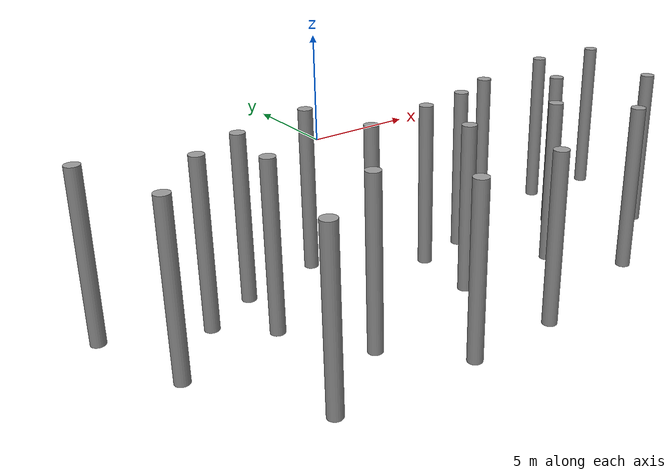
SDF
<sdf version="1.6">
 <model name="skog2">
  <link name="link_0_clone_22">
   <inertial>
    <mass>1</mass>
    <inertia><ixx>0.145833</ixx><ixy>0</ixy><ixz>0</ixz><iyy>0.145833</iyy><iyz>0</iyz><izz>0.125</izz></inertia>
   </inertial>
   <pose>-9.36789 -6.97052 0 0 -0 0</pose>
   <visual name="visual">
    <geometry><cylinder><radius>0.3</radius><length>7</length></cylinder></geometry>
    <material>
     <lighting>1</lighting>
     <script><uri>file://media/materials/scripts/gazebo.material</uri><name>Gazebo/Grey</name></script>
     <shader type="vertex"><normal_map>__default__</normal_map></shader>
     <ambient>0.3 0.3 0.3 1</ambient>
     <diffuse>0.7 0.7 0.7 1</diffuse>
     <specular>0.01 0.01 0.01 1</specular>
     <emissive>0 0 0 1</emissive>
    </material>
   </visual>
   <collision name="collision">
    <geometry><cylinder><radius>0.3</radius><length>7</length></cylinder></geometry>
    <surface>
     <friction>
      <ode><mu>1</mu><mu2>1</mu2><fdir1>0 0 0</fdir1><slip1>0</slip1><slip2>0</slip2></ode>
      <torsional>
       <coefficient>1</coefficient>
       <patch_radius>0</patch_radius>
       <surface_radius>0</surface_radius>
       <use_patch_radius>1</use_patch_radius>
       <ode><slip>0</slip></ode>
      </torsional>
     </friction>
     <bounce><restitution_coefficient>0</restitution_coefficient><threshold>1e+06</threshold></bounce>
     <contact>
      <collide_without_contact>0</collide_without_contact>
      <collide_without_contact_bitmask>1</collide_without_contact_bitmask>
      <collide_bitmask>1</collide_bitmask>
      <ode>
       <soft_cfm>0</soft_cfm>
       <soft_erp>0.2</soft_erp>
       <kp>1e+13</kp>
       <kd>1</kd>
       <max_vel>0.01</max_vel>
       <min_depth>0</min_depth>
      </ode>
      <bullet>
       <split_impulse>1</split_impulse>
       <split_impulse_penetration_threshold>-0.01</split_impulse_penetration_threshold>
       <soft_cfm>0</soft_cfm>
       <soft_erp>0.2</soft_erp>
       <kp>1e+13</kp>
       <kd>1</kd>
      </bullet>
     </contact>
    </surface>
   </collision>
  </link>
  <link name="link_0_clone_23">
   <inertial>
    <mass>1</mass>
    <inertia><ixx>0.145833</ixx><ixy>0</ixy><ixz>0</ixz><iyy>0.145833</iyy><iyz>0</iyz><izz>0.125</izz></inertia>
   </inertial>
   <pose>-7.53777 -8.66213 0 0 -0 0</pose>
   <visual name="visual">
    <geometry><cylinder><radius>0.3</radius><length>7</length></cylinder></geometry>
    <material>
     <lighting>1</lighting>
     <script><uri>file://media/materials/scripts/gazebo.material</uri><name>Gazebo/Grey</name></script>
     <shader type="vertex"><normal_map>__default__</normal_map></shader>
     <ambient>0.3 0.3 0.3 1</ambient>
     <diffuse>0.7 0.7 0.7 1</diffuse>
     <specular>0.01 0.01 0.01 1</specular>
     <emissive>0 0 0 1</emissive>
    </material>
   </visual>
   <collision name="collision">
    <geometry><cylinder><radius>0.3</radius><length>7</length></cylinder></geometry>
    <surface>
     <friction>
      <ode><mu>1</mu><mu2>1</mu2><fdir1>0 0 0</fdir1><slip1>0</slip1><slip2>0</slip2></ode>
      <torsional>
       <coefficient>1</coefficient>
       <patch_radius>0</patch_radius>
       <surface_radius>0</surface_radius>
       <use_patch_radius>1</use_patch_radius>
       <ode><slip>0</slip></ode>
      </torsional>
     </friction>
     <bounce><restitution_coefficient>0</restitution_coefficient><threshold>1e+06</threshold></bounce>
     <contact>
      <collide_without_contact>0</collide_without_contact>
      <collide_without_contact_bitmask>1</collide_without_contact_bitmask>
      <collide_bitmask>1</collide_bitmask>
      <ode>
       <soft_cfm>0</soft_cfm>
       <soft_erp>0.2</soft_erp>
       <kp>1e+13</kp>
       <kd>1</kd>
       <max_vel>0.01</max_vel>
       <min_depth>0</min_depth>
      </ode>
      <bullet>
       <split_impulse>1</split_impulse>
       <split_impulse_penetration_threshold>-0.01</split_impulse_penetration_threshold>
       <soft_cfm>0</soft_cfm>
       <soft_erp>0.2</soft_erp>
       <kp>1e+13</kp>
       <kd>1</kd>
      </bullet>
     </contact>
    </surface>
   </collision>
  </link>
  <link name="link_0_clone_24">
   <inertial>
    <mass>1</mass>
    <inertia><ixx>0.145833</ixx><ixy>0</ixy><ixz>0</ixz><iyy>0.145833</iyy><iyz>0</iyz><izz>0.125</izz></inertia>
   </inertial>
   <pose>-2.75121 -8.16197 0 0 -0 0</pose>
   <visual name="visual">
    <geometry><cylinder><radius>0.3</radius><length>7</length></cylinder></geometry>
    <material>
     <lighting>1</lighting>
     <script><uri>file://media/materials/scripts/gazebo.material</uri><name>Gazebo/Grey</name></script>
     <shader type="vertex"><normal_map>__default__</normal_map></shader>
     <ambient>0.3 0.3 0.3 1</ambient>
     <diffuse>0.7 0.7 0.7 1</diffuse>
     <specular>0.01 0.01 0.01 1</specular>
     <emissive>0 0 0 1</emissive>
    </material>
   </visual>
   <collision name="collision">
    <geometry><cylinder><radius>0.3</radius><length>7</length></cylinder></geometry>
    <surface>
     <friction>
      <ode><mu>1</mu><mu2>1</mu2><fdir1>0 0 0</fdir1><slip1>0</slip1><slip2>0</slip2></ode>
      <torsional>
       <coefficient>1</coefficient>
       <patch_radius>0</patch_radius>
       <surface_radius>0</surface_radius>
       <use_patch_radius>1</use_patch_radius>
       <ode><slip>0</slip></ode>
      </torsional>
     </friction>
     <bounce><restitution_coefficient>0</restitution_coefficient><threshold>1e+06</threshold></bounce>
     <contact>
      <collide_without_contact>0</collide_without_contact>
      <collide_without_contact_bitmask>1</collide_without_contact_bitmask>
      <collide_bitmask>1</collide_bitmask>
      <ode>
       <soft_cfm>0</soft_cfm>
       <soft_erp>0.2</soft_erp>
       <kp>1e+13</kp>
       <kd>1</kd>
       <max_vel>0.01</max_vel>
       <min_depth>0</min_depth>
      </ode>
      <bullet>
       <split_impulse>1</split_impulse>
       <split_impulse_penetration_threshold>-0.01</split_impulse_penetration_threshold>
       <soft_cfm>0</soft_cfm>
       <soft_erp>0.2</soft_erp>
       <kp>1e+13</kp>
       <kd>1</kd>
      </bullet>
     </contact>
    </surface>
   </collision>
  </link>
  <link name="link_0_clone_25">
   <inertial>
    <mass>1</mass>
    <inertia><ixx>0.145833</ixx><ixy>0</ixy><ixz>0</ixz><iyy>0.145833</iyy><iyz>0</iyz><izz>0.125</izz></inertia>
   </inertial>
   <pose>-7.15427 -5.82621 0 0 -0 0</pose>
   <visual name="visual">
    <geometry><cylinder><radius>0.3</radius><length>7</length></cylinder></geometry>
    <material>
     <lighting>1</lighting>
     <script><uri>file://media/materials/scripts/gazebo.material</uri><name>Gazebo/Grey</name></script>
     <shader type="vertex"><normal_map>__default__</normal_map></shader>
     <ambient>0.3 0.3 0.3 1</ambient>
     <diffuse>0.7 0.7 0.7 1</diffuse>
     <specular>0.01 0.01 0.01 1</specular>
     <emissive>0 0 0 1</emissive>
    </material>
   </visual>
   <collision name="collision">
    <geometry><cylinder><radius>0.3</radius><length>7</length></cylinder></geometry>
    <surface>
     <friction>
      <ode><mu>1</mu><mu2>1</mu2><fdir1>0 0 0</fdir1><slip1>0</slip1><slip2>0</slip2></ode>
      <torsional>
       <coefficient>1</coefficient>
       <patch_radius>0</patch_radius>
       <surface_radius>0</surface_radius>
       <use_patch_radius>1</use_patch_radius>
       <ode><slip>0</slip></ode>
      </torsional>
     </friction>
     <bounce><restitution_coefficient>0</restitution_coefficient><threshold>1e+06</threshold></bounce>
     <contact>
      <collide_without_contact>0</collide_without_contact>
      <collide_without_contact_bitmask>1</collide_without_contact_bitmask>
      <collide_bitmask>1</collide_bitmask>
      <ode>
       <soft_cfm>0</soft_cfm>
       <soft_erp>0.2</soft_erp>
       <kp>1e+13</kp>
       <kd>1</kd>
       <max_vel>0.01</max_vel>
       <min_depth>0</min_depth>
      </ode>
      <bullet>
       <split_impulse>1</split_impulse>
       <split_impulse_penetration_threshold>-0.01</split_impulse_penetration_threshold>
       <soft_cfm>0</soft_cfm>
       <soft_erp>0.2</soft_erp>
       <kp>1e+13</kp>
       <kd>1</kd>
      </bullet>
     </contact>
    </surface>
   </collision>
  </link>
  <link name="link_0_clone_26">
   <inertial>
    <mass>1</mass>
    <inertia><ixx>0.145833</ixx><ixy>0</ixy><ixz>0</ixz><iyy>0.145833</iyy><iyz>0</iyz><izz>0.125</izz></inertia>
   </inertial>
   <pose>2.77127 -7.06466 0 0 -0 0</pose>
   <visual name="visual">
    <geometry><cylinder><radius>0.3</radius><length>7</length></cylinder></geometry>
    <material>
     <lighting>1</lighting>
     <script><uri>file://media/materials/scripts/gazebo.material</uri><name>Gazebo/Grey</name></script>
     <shader type="vertex"><normal_map>__default__</normal_map></shader>
     <ambient>0.3 0.3 0.3 1</ambient>
     <diffuse>0.7 0.7 0.7 1</diffuse>
     <specular>0.01 0.01 0.01 1</specular>
     <emissive>0 0 0 1</emissive>
    </material>
   </visual>
   <collision name="collision">
    <geometry><cylinder><radius>0.3</radius><length>7</length></cylinder></geometry>
    <surface>
     <friction>
      <ode><mu>1</mu><mu2>1</mu2><fdir1>0 0 0</fdir1><slip1>0</slip1><slip2>0</slip2></ode>
      <torsional>
       <coefficient>1</coefficient>
       <patch_radius>0</patch_radius>
       <surface_radius>0</surface_radius>
       <use_patch_radius>1</use_patch_radius>
       <ode><slip>0</slip></ode>
      </torsional>
     </friction>
     <bounce><restitution_coefficient>0</restitution_coefficient><threshold>1e+06</threshold></bounce>
     <contact>
      <collide_without_contact>0</collide_without_contact>
      <collide_without_contact_bitmask>1</collide_without_contact_bitmask>
      <collide_bitmask>1</collide_bitmask>
      <ode>
       <soft_cfm>0</soft_cfm>
       <soft_erp>0.2</soft_erp>
       <kp>1e+13</kp>
       <kd>1</kd>
       <max_vel>0.01</max_vel>
       <min_depth>0</min_depth>
      </ode>
      <bullet>
       <split_impulse>1</split_impulse>
       <split_impulse_penetration_threshold>-0.01</split_impulse_penetration_threshold>
       <soft_cfm>0</soft_cfm>
       <soft_erp>0.2</soft_erp>
       <kp>1e+13</kp>
       <kd>1</kd>
      </bullet>
     </contact>
    </surface>
   </collision>
  </link>
  <link name="link_0_clone_27">
   <inertial>
    <mass>1</mass>
    <inertia><ixx>0.145833</ixx><ixy>0</ixy><ixz>0</ixz><iyy>0.145833</iyy><iyz>0</iyz><izz>0.125</izz></inertia>
   </inertial>
   <pose>4.93309 -6.15341 0 0 -0 0</pose>
   <visual name="visual">
    <geometry><cylinder><radius>0.3</radius><length>7</length></cylinder></geometry>
    <material>
     <lighting>1</lighting>
     <script><uri>file://media/materials/scripts/gazebo.material</uri><name>Gazebo/Grey</name></script>
     <shader type="vertex"><normal_map>__default__</normal_map></shader>
     <ambient>0.3 0.3 0.3 1</ambient>
     <diffuse>0.7 0.7 0.7 1</diffuse>
     <specular>0.01 0.01 0.01 1</specular>
     <emissive>0 0 0 1</emissive>
    </material>
   </visual>
   <collision name="collision">
    <geometry><cylinder><radius>0.3</radius><length>7</length></cylinder></geometry>
    <surface>
     <friction>
      <ode><mu>1</mu><mu2>1</mu2><fdir1>0 0 0</fdir1><slip1>0</slip1><slip2>0</slip2></ode>
      <torsional>
       <coefficient>1</coefficient>
       <patch_radius>0</patch_radius>
       <surface_radius>0</surface_radius>
       <use_patch_radius>1</use_patch_radius>
       <ode><slip>0</slip></ode>
      </torsional>
     </friction>
     <bounce><restitution_coefficient>0</restitution_coefficient><threshold>1e+06</threshold></bounce>
     <contact>
      <collide_without_contact>0</collide_without_contact>
      <collide_without_contact_bitmask>1</collide_without_contact_bitmask>
      <collide_bitmask>1</collide_bitmask>
      <ode>
       <soft_cfm>0</soft_cfm>
       <soft_erp>0.2</soft_erp>
       <kp>1e+13</kp>
       <kd>1</kd>
       <max_vel>0.01</max_vel>
       <min_depth>0</min_depth>
      </ode>
      <bullet>
       <split_impulse>1</split_impulse>
       <split_impulse_penetration_threshold>-0.01</split_impulse_penetration_threshold>
       <soft_cfm>0</soft_cfm>
       <soft_erp>0.2</soft_erp>
       <kp>1e+13</kp>
       <kd>1</kd>
      </bullet>
     </contact>
    </surface>
   </collision>
  </link>
  <link name="link_0_clone_28">
   <inertial>
    <mass>1</mass>
    <inertia><ixx>0.145833</ixx><ixy>0</ixy><ixz>0</ixz><iyy>0.145833</iyy><iyz>0</iyz><izz>0.125</izz></inertia>
   </inertial>
   <pose>7.6559 -7.95453 0 0 -0 0</pose>
   <visual name="visual">
    <geometry><cylinder><radius>0.3</radius><length>7</length></cylinder></geometry>
    <material>
     <lighting>1</lighting>
     <script><uri>file://media/materials/scripts/gazebo.material</uri><name>Gazebo/Grey</name></script>
     <shader type="vertex"><normal_map>__default__</normal_map></shader>
     <ambient>0.3 0.3 0.3 1</ambient>
     <diffuse>0.7 0.7 0.7 1</diffuse>
     <specular>0.01 0.01 0.01 1</specular>
     <emissive>0 0 0 1</emissive>
    </material>
   </visual>
   <collision name="collision">
    <geometry><cylinder><radius>0.3</radius><length>7</length></cylinder></geometry>
    <surface>
     <friction>
      <ode><mu>1</mu><mu2>1</mu2><fdir1>0 0 0</fdir1><slip1>0</slip1><slip2>0</slip2></ode>
      <torsional>
       <coefficient>1</coefficient>
       <patch_radius>0</patch_radius>
       <surface_radius>0</surface_radius>
       <use_patch_radius>1</use_patch_radius>
       <ode><slip>0</slip></ode>
      </torsional>
     </friction>
     <bounce><restitution_coefficient>0</restitution_coefficient><threshold>1e+06</threshold></bounce>
     <contact>
      <collide_without_contact>0</collide_without_contact>
      <collide_without_contact_bitmask>1</collide_without_contact_bitmask>
      <collide_bitmask>1</collide_bitmask>
      <ode>
       <soft_cfm>0</soft_cfm>
       <soft_erp>0.2</soft_erp>
       <kp>1e+13</kp>
       <kd>1</kd>
       <max_vel>0.01</max_vel>
       <min_depth>0</min_depth>
      </ode>
      <bullet>
       <split_impulse>1</split_impulse>
       <split_impulse_penetration_threshold>-0.01</split_impulse_penetration_threshold>
       <soft_cfm>0</soft_cfm>
       <soft_erp>0.2</soft_erp>
       <kp>1e+13</kp>
       <kd>1</kd>
      </bullet>
     </contact>
    </surface>
   </collision>
  </link>
  <link name="link_0_clone_30">
   <inertial>
    <mass>1</mass>
    <inertia><ixx>0.145833</ixx><ixy>0</ixy><ixz>0</ixz><iyy>0.145833</iyy><iyz>0</iyz><izz>0.125</izz></inertia>
   </inertial>
   <pose>9.4573 -5.17921 0 0 -0 0</pose>
   <visual name="visual">
    <geometry><cylinder><radius>0.3</radius><length>7</length></cylinder></geometry>
    <material>
     <lighting>1</lighting>
     <script><uri>file://media/materials/scripts/gazebo.material</uri><name>Gazebo/Grey</name></script>
     <shader type="vertex"><normal_map>__default__</normal_map></shader>
     <ambient>0.3 0.3 0.3 1</ambient>
     <diffuse>0.7 0.7 0.7 1</diffuse>
     <specular>0.01 0.01 0.01 1</specular>
     <emissive>0 0 0 1</emissive>
    </material>
   </visual>
   <collision name="collision">
    <geometry><cylinder><radius>0.3</radius><length>7</length></cylinder></geometry>
    <surface>
     <friction>
      <ode><mu>1</mu><mu2>1</mu2><fdir1>0 0 0</fdir1><slip1>0</slip1><slip2>0</slip2></ode>
      <torsional>
       <coefficient>1</coefficient>
       <patch_radius>0</patch_radius>
       <surface_radius>0</surface_radius>
       <use_patch_radius>1</use_patch_radius>
       <ode><slip>0</slip></ode>
      </torsional>
     </friction>
     <bounce><restitution_coefficient>0</restitution_coefficient><threshold>1e+06</threshold></bounce>
     <contact>
      <collide_without_contact>0</collide_without_contact>
      <collide_without_contact_bitmask>1</collide_without_contact_bitmask>
      <collide_bitmask>1</collide_bitmask>
      <ode>
       <soft_cfm>0</soft_cfm>
       <soft_erp>0.2</soft_erp>
       <kp>1e+13</kp>
       <kd>1</kd>
       <max_vel>0.01</max_vel>
       <min_depth>0</min_depth>
      </ode>
      <bullet>
       <split_impulse>1</split_impulse>
       <split_impulse_penetration_threshold>-0.01</split_impulse_penetration_threshold>
       <soft_cfm>0</soft_cfm>
       <soft_erp>0.2</soft_erp>
       <kp>1e+13</kp>
       <kd>1</kd>
      </bullet>
     </contact>
    </surface>
   </collision>
  </link>
  <link name="link_0_clone_44">
   <inertial>
    <mass>1</mass>
    <inertia><ixx>0.145833</ixx><ixy>0</ixy><ixz>0</ixz><iyy>0.145833</iyy><iyz>0</iyz><izz>0.125</izz></inertia>
   </inertial>
   <pose>-13.0918 -5.32141 0 0 -0 0</pose>
   <visual name="visual">
    <geometry><cylinder><radius>0.3</radius><length>7</length></cylinder></geometry>
    <material>
     <lighting>1</lighting>
     <script><uri>file://media/materials/scripts/gazebo.material</uri><name>Gazebo/Grey</name></script>
     <shader type="vertex"><normal_map>__default__</normal_map></shader>
     <ambient>0.3 0.3 0.3 1</ambient>
     <diffuse>0.7 0.7 0.7 1</diffuse>
     <specular>0.01 0.01 0.01 1</specular>
     <emissive>0 0 0 1</emissive>
    </material>
   </visual>
   <collision name="collision">
    <geometry><cylinder><radius>0.3</radius><length>7</length></cylinder></geometry>
    <surface>
     <friction>
      <ode><mu>1</mu><mu2>1</mu2><fdir1>0 0 0</fdir1><slip1>0</slip1><slip2>0</slip2></ode>
      <torsional>
       <coefficient>1</coefficient>
       <patch_radius>0</patch_radius>
       <surface_radius>0</surface_radius>
       <use_patch_radius>1</use_patch_radius>
       <ode><slip>0</slip></ode>
      </torsional>
     </friction>
     <bounce><restitution_coefficient>0</restitution_coefficient><threshold>1e+06</threshold></bounce>
     <contact>
      <collide_without_contact>0</collide_without_contact>
      <collide_without_contact_bitmask>1</collide_without_contact_bitmask>
      <collide_bitmask>1</collide_bitmask>
      <ode>
       <soft_cfm>0</soft_cfm>
       <soft_erp>0.2</soft_erp>
       <kp>1e+13</kp>
       <kd>1</kd>
       <max_vel>0.01</max_vel>
       <min_depth>0</min_depth>
      </ode>
      <bullet>
       <split_impulse>1</split_impulse>
       <split_impulse_penetration_threshold>-0.01</split_impulse_penetration_threshold>
       <soft_cfm>0</soft_cfm>
       <soft_erp>0.2</soft_erp>
       <kp>1e+13</kp>
       <kd>1</kd>
      </bullet>
     </contact>
    </surface>
   </collision>
  </link>
  <link name="link_0_clone_45">
   <inertial>
    <mass>1</mass>
    <inertia><ixx>0.145833</ixx><ixy>0</ixy><ixz>0</ixz><iyy>0.145833</iyy><iyz>0</iyz><izz>0.125</izz></inertia>
   </inertial>
   <pose>-11.7464 -9.42807 0 0 -0 0</pose>
   <visual name="visual">
    <geometry><cylinder><radius>0.3</radius><length>7</length></cylinder></geometry>
    <material>
     <lighting>1</lighting>
     <script><uri>file://media/materials/scripts/gazebo.material</uri><name>Gazebo/Grey</name></script>
     <shader type="vertex"><normal_map>__default__</normal_map></shader>
     <ambient>0.3 0.3 0.3 1</ambient>
     <diffuse>0.7 0.7 0.7 1</diffuse>
     <specular>0.01 0.01 0.01 1</specular>
     <emissive>0 0 0 1</emissive>
    </material>
   </visual>
   <collision name="collision">
    <geometry><cylinder><radius>0.3</radius><length>7</length></cylinder></geometry>
    <surface>
     <friction>
      <ode><mu>1</mu><mu2>1</mu2><fdir1>0 0 0</fdir1><slip1>0</slip1><slip2>0</slip2></ode>
      <torsional>
       <coefficient>1</coefficient>
       <patch_radius>0</patch_radius>
       <surface_radius>0</surface_radius>
       <use_patch_radius>1</use_patch_radius>
       <ode><slip>0</slip></ode>
      </torsional>
     </friction>
     <bounce><restitution_coefficient>0</restitution_coefficient><threshold>1e+06</threshold></bounce>
     <contact>
      <collide_without_contact>0</collide_without_contact>
      <collide_without_contact_bitmask>1</collide_without_contact_bitmask>
      <collide_bitmask>1</collide_bitmask>
      <ode>
       <soft_cfm>0</soft_cfm>
       <soft_erp>0.2</soft_erp>
       <kp>1e+13</kp>
       <kd>1</kd>
       <max_vel>0.01</max_vel>
       <min_depth>0</min_depth>
      </ode>
      <bullet>
       <split_impulse>1</split_impulse>
       <split_impulse_penetration_threshold>-0.01</split_impulse_penetration_threshold>
       <soft_cfm>0</soft_cfm>
       <soft_erp>0.2</soft_erp>
       <kp>1e+13</kp>
       <kd>1</kd>
      </bullet>
     </contact>
    </surface>
   </collision>
  </link>
  <link name="link_0_clone_46">
   <inertial>
    <mass>1</mass>
    <inertia><ixx>0.145833</ixx><ixy>0</ixy><ixz>0</ixz><iyy>0.145833</iyy><iyz>0</iyz><izz>0.125</izz></inertia>
   </inertial>
   <pose>-5.45294 -11.9323 0 0 -0 0</pose>
   <visual name="visual">
    <geometry><cylinder><radius>0.3</radius><length>7</length></cylinder></geometry>
    <material>
     <lighting>1</lighting>
     <script><uri>file://media/materials/scripts/gazebo.material</uri><name>Gazebo/Grey</name></script>
     <shader type="vertex"><normal_map>__default__</normal_map></shader>
     <ambient>0.3 0.3 0.3 1</ambient>
     <diffuse>0.7 0.7 0.7 1</diffuse>
     <specular>0.01 0.01 0.01 1</specular>
     <emissive>0 0 0 1</emissive>
    </material>
   </visual>
   <collision name="collision">
    <geometry><cylinder><radius>0.3</radius><length>7</length></cylinder></geometry>
    <surface>
     <friction>
      <ode><mu>1</mu><mu2>1</mu2><fdir1>0 0 0</fdir1><slip1>0</slip1><slip2>0</slip2></ode>
      <torsional>
       <coefficient>1</coefficient>
       <patch_radius>0</patch_radius>
       <surface_radius>0</surface_radius>
       <use_patch_radius>1</use_patch_radius>
       <ode><slip>0</slip></ode>
      </torsional>
     </friction>
     <bounce><restitution_coefficient>0</restitution_coefficient><threshold>1e+06</threshold></bounce>
     <contact>
      <collide_without_contact>0</collide_without_contact>
      <collide_without_contact_bitmask>1</collide_without_contact_bitmask>
      <collide_bitmask>1</collide_bitmask>
      <ode>
       <soft_cfm>0</soft_cfm>
       <soft_erp>0.2</soft_erp>
       <kp>1e+13</kp>
       <kd>1</kd>
       <max_vel>0.01</max_vel>
       <min_depth>0</min_depth>
      </ode>
      <bullet>
       <split_impulse>1</split_impulse>
       <split_impulse_penetration_threshold>-0.01</split_impulse_penetration_threshold>
       <soft_cfm>0</soft_cfm>
       <soft_erp>0.2</soft_erp>
       <kp>1e+13</kp>
       <kd>1</kd>
      </bullet>
     </contact>
    </surface>
   </collision>
  </link>
  <link name="link_0_clone_47">
   <inertial>
    <mass>1</mass>
    <inertia><ixx>0.145833</ixx><ixy>0</ixy><ixz>0</ixz><iyy>0.145833</iyy><iyz>0</iyz><izz>0.125</izz></inertia>
   </inertial>
   <pose>0.179659 -10.4379 0 0 -0 0</pose>
   <visual name="visual">
    <geometry><cylinder><radius>0.3</radius><length>7</length></cylinder></geometry>
    <material>
     <lighting>1</lighting>
     <script><uri>file://media/materials/scripts/gazebo.material</uri><name>Gazebo/Grey</name></script>
     <shader type="vertex"><normal_map>__default__</normal_map></shader>
     <ambient>0.3 0.3 0.3 1</ambient>
     <diffuse>0.7 0.7 0.7 1</diffuse>
     <specular>0.01 0.01 0.01 1</specular>
     <emissive>0 0 0 1</emissive>
    </material>
   </visual>
   <collision name="collision">
    <geometry><cylinder><radius>0.3</radius><length>7</length></cylinder></geometry>
    <surface>
     <friction>
      <ode><mu>1</mu><mu2>1</mu2><fdir1>0 0 0</fdir1><slip1>0</slip1><slip2>0</slip2></ode>
      <torsional>
       <coefficient>1</coefficient>
       <patch_radius>0</patch_radius>
       <surface_radius>0</surface_radius>
       <use_patch_radius>1</use_patch_radius>
       <ode><slip>0</slip></ode>
      </torsional>
     </friction>
     <bounce><restitution_coefficient>0</restitution_coefficient><threshold>1e+06</threshold></bounce>
     <contact>
      <collide_without_contact>0</collide_without_contact>
      <collide_without_contact_bitmask>1</collide_without_contact_bitmask>
      <collide_bitmask>1</collide_bitmask>
      <ode>
       <soft_cfm>0</soft_cfm>
       <soft_erp>0.2</soft_erp>
       <kp>1e+13</kp>
       <kd>1</kd>
       <max_vel>0.01</max_vel>
       <min_depth>0</min_depth>
      </ode>
      <bullet>
       <split_impulse>1</split_impulse>
       <split_impulse_penetration_threshold>-0.01</split_impulse_penetration_threshold>
       <soft_cfm>0</soft_cfm>
       <soft_erp>0.2</soft_erp>
       <kp>1e+13</kp>
       <kd>1</kd>
      </bullet>
     </contact>
    </surface>
   </collision>
  </link>
  <link name="link_0_clone_48">
   <inertial>
    <mass>1</mass>
    <inertia><ixx>0.145833</ixx><ixy>0</ixy><ixz>0</ixz><iyy>0.145833</iyy><iyz>0</iyz><izz>0.125</izz></inertia>
   </inertial>
   <pose>4.80433 -10.5674 0 0 -0 0</pose>
   <visual name="visual">
    <geometry><cylinder><radius>0.3</radius><length>7</length></cylinder></geometry>
    <material>
     <lighting>1</lighting>
     <script><uri>file://media/materials/scripts/gazebo.material</uri><name>Gazebo/Grey</name></script>
     <shader type="vertex"><normal_map>__default__</normal_map></shader>
     <ambient>0.3 0.3 0.3 1</ambient>
     <diffuse>0.7 0.7 0.7 1</diffuse>
     <specular>0.01 0.01 0.01 1</specular>
     <emissive>0 0 0 1</emissive>
    </material>
   </visual>
   <collision name="collision">
    <geometry><cylinder><radius>0.3</radius><length>7</length></cylinder></geometry>
    <surface>
     <friction>
      <ode><mu>1</mu><mu2>1</mu2><fdir1>0 0 0</fdir1><slip1>0</slip1><slip2>0</slip2></ode>
      <torsional>
       <coefficient>1</coefficient>
       <patch_radius>0</patch_radius>
       <surface_radius>0</surface_radius>
       <use_patch_radius>1</use_patch_radius>
       <ode><slip>0</slip></ode>
      </torsional>
     </friction>
     <bounce><restitution_coefficient>0</restitution_coefficient><threshold>1e+06</threshold></bounce>
     <contact>
      <collide_without_contact>0</collide_without_contact>
      <collide_without_contact_bitmask>1</collide_without_contact_bitmask>
      <collide_bitmask>1</collide_bitmask>
      <ode>
       <soft_cfm>0</soft_cfm>
       <soft_erp>0.2</soft_erp>
       <kp>1e+13</kp>
       <kd>1</kd>
       <max_vel>0.01</max_vel>
       <min_depth>0</min_depth>
      </ode>
      <bullet>
       <split_impulse>1</split_impulse>
       <split_impulse_penetration_threshold>-0.01</split_impulse_penetration_threshold>
       <soft_cfm>0</soft_cfm>
       <soft_erp>0.2</soft_erp>
       <kp>1e+13</kp>
       <kd>1</kd>
      </bullet>
     </contact>
    </surface>
   </collision>
  </link>
  <link name="link_0_clone_49">
   <inertial>
    <mass>1</mass>
    <inertia><ixx>0.145833</ixx><ixy>0</ixy><ixz>0</ixz><iyy>0.145833</iyy><iyz>0</iyz><izz>0.125</izz></inertia>
   </inertial>
   <pose>11.1116 -10.2329 0 0 -0 0</pose>
   <visual name="visual">
    <geometry><cylinder><radius>0.3</radius><length>7</length></cylinder></geometry>
    <material>
     <lighting>1</lighting>
     <script><uri>file://media/materials/scripts/gazebo.material</uri><name>Gazebo/Grey</name></script>
     <shader type="vertex"><normal_map>__default__</normal_map></shader>
     <ambient>0.3 0.3 0.3 1</ambient>
     <diffuse>0.7 0.7 0.7 1</diffuse>
     <specular>0.01 0.01 0.01 1</specular>
     <emissive>0 0 0 1</emissive>
    </material>
   </visual>
   <collision name="collision">
    <geometry><cylinder><radius>0.3</radius><length>7</length></cylinder></geometry>
    <surface>
     <friction>
      <ode><mu>1</mu><mu2>1</mu2><fdir1>0 0 0</fdir1><slip1>0</slip1><slip2>0</slip2></ode>
      <torsional>
       <coefficient>1</coefficient>
       <patch_radius>0</patch_radius>
       <surface_radius>0</surface_radius>
       <use_patch_radius>1</use_patch_radius>
       <ode><slip>0</slip></ode>
      </torsional>
     </friction>
     <bounce><restitution_coefficient>0</restitution_coefficient><threshold>1e+06</threshold></bounce>
     <contact>
      <collide_without_contact>0</collide_without_contact>
      <collide_without_contact_bitmask>1</collide_without_contact_bitmask>
      <collide_bitmask>1</collide_bitmask>
      <ode>
       <soft_cfm>0</soft_cfm>
       <soft_erp>0.2</soft_erp>
       <kp>1e+13</kp>
       <kd>1</kd>
       <max_vel>0.01</max_vel>
       <min_depth>0</min_depth>
      </ode>
      <bullet>
       <split_impulse>1</split_impulse>
       <split_impulse_penetration_threshold>-0.01</split_impulse_penetration_threshold>
       <soft_cfm>0</soft_cfm>
       <soft_erp>0.2</soft_erp>
       <kp>1e+13</kp>
       <kd>1</kd>
      </bullet>
     </contact>
    </surface>
   </collision>
  </link>
  <link name="link_0_clone_50">
   <inertial>
    <mass>1</mass>
    <inertia><ixx>0.145833</ixx><ixy>0</ixy><ixz>0</ixz><iyy>0.145833</iyy><iyz>0</iyz><izz>0.125</izz></inertia>
   </inertial>
   <pose>12.8716 -5.4077 0 0 -0 0</pose>
   <visual name="visual">
    <geometry><cylinder><radius>0.3</radius><length>7</length></cylinder></geometry>
    <material>
     <lighting>1</lighting>
     <script><uri>file://media/materials/scripts/gazebo.material</uri><name>Gazebo/Grey</name></script>
     <shader type="vertex"><normal_map>__default__</normal_map></shader>
     <ambient>0.3 0.3 0.3 1</ambient>
     <diffuse>0.7 0.7 0.7 1</diffuse>
     <specular>0.01 0.01 0.01 1</specular>
     <emissive>0 0 0 1</emissive>
    </material>
   </visual>
   <collision name="collision">
    <geometry><cylinder><radius>0.3</radius><length>7</length></cylinder></geometry>
    <surface>
     <friction>
      <ode><mu>1</mu><mu2>1</mu2><fdir1>0 0 0</fdir1><slip1>0</slip1><slip2>0</slip2></ode>
      <torsional>
       <coefficient>1</coefficient>
       <patch_radius>0</patch_radius>
       <surface_radius>0</surface_radius>
       <use_patch_radius>1</use_patch_radius>
       <ode><slip>0</slip></ode>
      </torsional>
     </friction>
     <bounce><restitution_coefficient>0</restitution_coefficient><threshold>1e+06</threshold></bounce>
     <contact>
      <collide_without_contact>0</collide_without_contact>
      <collide_without_contact_bitmask>1</collide_without_contact_bitmask>
      <collide_bitmask>1</collide_bitmask>
      <ode>
       <soft_cfm>0</soft_cfm>
       <soft_erp>0.2</soft_erp>
       <kp>1e+13</kp>
       <kd>1</kd>
       <max_vel>0.01</max_vel>
       <min_depth>0</min_depth>
      </ode>
      <bullet>
       <split_impulse>1</split_impulse>
       <split_impulse_penetration_threshold>-0.01</split_impulse_penetration_threshold>
       <soft_cfm>0</soft_cfm>
       <soft_erp>0.2</soft_erp>
       <kp>1e+13</kp>
       <kd>1</kd>
      </bullet>
     </contact>
    </surface>
   </collision>
  </link>
  <link name="link_0_clone_54">
   <inertial>
    <mass>1</mass>
    <inertia><ixx>0.145833</ixx><ixy>0</ixy><ixz>0</ixz><iyy>0.145833</iyy><iyz>0</iyz><izz>0.125</izz></inertia>
   </inertial>
   <pose>6.89261 -13.0478 0 0 -0 0</pose>
   <visual name="visual">
    <geometry><cylinder><radius>0.3</radius><length>7</length></cylinder></geometry>
    <material>
     <lighting>1</lighting>
     <script><uri>file://media/materials/scripts/gazebo.material</uri><name>Gazebo/Grey</name></script>
     <shader type="vertex"><normal_map>__default__</normal_map></shader>
     <ambient>0.3 0.3 0.3 1</ambient>
     <diffuse>0.7 0.7 0.7 1</diffuse>
     <specular>0.01 0.01 0.01 1</specular>
     <emissive>0 0 0 1</emissive>
    </material>
   </visual>
   <collision name="collision">
    <geometry><cylinder><radius>0.3</radius><length>7</length></cylinder></geometry>
    <surface>
     <friction>
      <ode><mu>1</mu><mu2>1</mu2><fdir1>0 0 0</fdir1><slip1>0</slip1><slip2>0</slip2></ode>
      <torsional>
       <coefficient>1</coefficient>
       <patch_radius>0</patch_radius>
       <surface_radius>0</surface_radius>
       <use_patch_radius>1</use_patch_radius>
       <ode><slip>0</slip></ode>
      </torsional>
     </friction>
     <bounce><restitution_coefficient>0</restitution_coefficient><threshold>1e+06</threshold></bounce>
     <contact>
      <collide_without_contact>0</collide_without_contact>
      <collide_without_contact_bitmask>1</collide_without_contact_bitmask>
      <collide_bitmask>1</collide_bitmask>
      <ode>
       <soft_cfm>0</soft_cfm>
       <soft_erp>0.2</soft_erp>
       <kp>1e+13</kp>
       <kd>1</kd>
       <max_vel>0.01</max_vel>
       <min_depth>0</min_depth>
      </ode>
      <bullet>
       <split_impulse>1</split_impulse>
       <split_impulse_penetration_threshold>-0.01</split_impulse_penetration_threshold>
       <soft_cfm>0</soft_cfm>
       <soft_erp>0.2</soft_erp>
       <kp>1e+13</kp>
       <kd>1</kd>
      </bullet>
     </contact>
    </surface>
   </collision>
  </link>
  <link name="link_0_clone_55">
   <inertial>
    <mass>1</mass>
    <inertia><ixx>0.145833</ixx><ixy>0</ixy><ixz>0</ixz><iyy>0.145833</iyy><iyz>0</iyz><izz>0.125</izz></inertia>
   </inertial>
   <pose>0.894244 -14.4362 0 0 -0 0</pose>
   <visual name="visual">
    <geometry><cylinder><radius>0.3</radius><length>7</length></cylinder></geometry>
    <material>
     <lighting>1</lighting>
     <script><uri>file://media/materials/scripts/gazebo.material</uri><name>Gazebo/Grey</name></script>
     <shader type="vertex"><normal_map>__default__</normal_map></shader>
     <ambient>0.3 0.3 0.3 1</ambient>
     <diffuse>0.7 0.7 0.7 1</diffuse>
     <specular>0.01 0.01 0.01 1</specular>
     <emissive>0 0 0 1</emissive>
    </material>
   </visual>
   <collision name="collision">
    <geometry><cylinder><radius>0.3</radius><length>7</length></cylinder></geometry>
    <surface>
     <friction>
      <ode><mu>1</mu><mu2>1</mu2><fdir1>0 0 0</fdir1><slip1>0</slip1><slip2>0</slip2></ode>
      <torsional>
       <coefficient>1</coefficient>
       <patch_radius>0</patch_radius>
       <surface_radius>0</surface_radius>
       <use_patch_radius>1</use_patch_radius>
       <ode><slip>0</slip></ode>
      </torsional>
     </friction>
     <bounce><restitution_coefficient>0</restitution_coefficient><threshold>1e+06</threshold></bounce>
     <contact>
      <collide_without_contact>0</collide_without_contact>
      <collide_without_contact_bitmask>1</collide_without_contact_bitmask>
      <collide_bitmask>1</collide_bitmask>
      <ode>
       <soft_cfm>0</soft_cfm>
       <soft_erp>0.2</soft_erp>
       <kp>1e+13</kp>
       <kd>1</kd>
       <max_vel>0.01</max_vel>
       <min_depth>0</min_depth>
      </ode>
      <bullet>
       <split_impulse>1</split_impulse>
       <split_impulse_penetration_threshold>-0.01</split_impulse_penetration_threshold>
       <soft_cfm>0</soft_cfm>
       <soft_erp>0.2</soft_erp>
       <kp>1e+13</kp>
       <kd>1</kd>
      </bullet>
     </contact>
    </surface>
   </collision>
  </link>
  <link name="link_0_clone_56">
   <inertial>
    <mass>1</mass>
    <inertia><ixx>0.145833</ixx><ixy>0</ixy><ixz>0</ixz><iyy>0.145833</iyy><iyz>0</iyz><izz>0.125</izz></inertia>
   </inertial>
   <pose>-3.04836 -14.5725 0 0 -0 0</pose>
   <visual name="visual">
    <geometry><cylinder><radius>0.3</radius><length>7</length></cylinder></geometry>
    <material>
     <lighting>1</lighting>
     <script><uri>file://media/materials/scripts/gazebo.material</uri><name>Gazebo/Grey</name></script>
     <shader type="vertex"><normal_map>__default__</normal_map></shader>
     <ambient>0.3 0.3 0.3 1</ambient>
     <diffuse>0.7 0.7 0.7 1</diffuse>
     <specular>0.01 0.01 0.01 1</specular>
     <emissive>0 0 0 1</emissive>
    </material>
   </visual>
   <collision name="collision">
    <geometry><cylinder><radius>0.3</radius><length>7</length></cylinder></geometry>
    <surface>
     <friction>
      <ode><mu>1</mu><mu2>1</mu2><fdir1>0 0 0</fdir1><slip1>0</slip1><slip2>0</slip2></ode>
      <torsional>
       <coefficient>1</coefficient>
       <patch_radius>0</patch_radius>
       <surface_radius>0</surface_radius>
       <use_patch_radius>1</use_patch_radius>
       <ode><slip>0</slip></ode>
      </torsional>
     </friction>
     <bounce><restitution_coefficient>0</restitution_coefficient><threshold>1e+06</threshold></bounce>
     <contact>
      <collide_without_contact>0</collide_without_contact>
      <collide_without_contact_bitmask>1</collide_without_contact_bitmask>
      <collide_bitmask>1</collide_bitmask>
      <ode>
       <soft_cfm>0</soft_cfm>
       <soft_erp>0.2</soft_erp>
       <kp>1e+13</kp>
       <kd>1</kd>
       <max_vel>0.01</max_vel>
       <min_depth>0</min_depth>
      </ode>
      <bullet>
       <split_impulse>1</split_impulse>
       <split_impulse_penetration_threshold>-0.01</split_impulse_penetration_threshold>
       <soft_cfm>0</soft_cfm>
       <soft_erp>0.2</soft_erp>
       <kp>1e+13</kp>
       <kd>1</kd>
      </bullet>
     </contact>
    </surface>
   </collision>
  </link>
  <link name="link_0_clone_57">
   <inertial>
    <mass>1</mass>
    <inertia><ixx>0.145833</ixx><ixy>0</ixy><ixz>0</ixz><iyy>0.145833</iyy><iyz>0</iyz><izz>0.125</izz></inertia>
   </inertial>
   <pose>-8.7233 -14.1746 0 0 -0 0</pose>
   <visual name="visual">
    <geometry><cylinder><radius>0.3</radius><length>7</length></cylinder></geometry>
    <material>
     <lighting>1</lighting>
     <script><uri>file://media/materials/scripts/gazebo.material</uri><name>Gazebo/Grey</name></script>
     <shader type="vertex"><normal_map>__default__</normal_map></shader>
     <ambient>0.3 0.3 0.3 1</ambient>
     <diffuse>0.7 0.7 0.7 1</diffuse>
     <specular>0.01 0.01 0.01 1</specular>
     <emissive>0 0 0 1</emissive>
    </material>
   </visual>
   <collision name="collision">
    <geometry><cylinder><radius>0.3</radius><length>7</length></cylinder></geometry>
    <surface>
     <friction>
      <ode><mu>1</mu><mu2>1</mu2><fdir1>0 0 0</fdir1><slip1>0</slip1><slip2>0</slip2></ode>
      <torsional>
       <coefficient>1</coefficient>
       <patch_radius>0</patch_radius>
       <surface_radius>0</surface_radius>
       <use_patch_radius>1</use_patch_radius>
       <ode><slip>0</slip></ode>
      </torsional>
     </friction>
     <bounce><restitution_coefficient>0</restitution_coefficient><threshold>1e+06</threshold></bounce>
     <contact>
      <collide_without_contact>0</collide_without_contact>
      <collide_without_contact_bitmask>1</collide_without_contact_bitmask>
      <collide_bitmask>1</collide_bitmask>
      <ode>
       <soft_cfm>0</soft_cfm>
       <soft_erp>0.2</soft_erp>
       <kp>1e+13</kp>
       <kd>1</kd>
       <max_vel>0.01</max_vel>
       <min_depth>0</min_depth>
      </ode>
      <bullet>
       <split_impulse>1</split_impulse>
       <split_impulse_penetration_threshold>-0.01</split_impulse_penetration_threshold>
       <soft_cfm>0</soft_cfm>
       <soft_erp>0.2</soft_erp>
       <kp>1e+13</kp>
       <kd>1</kd>
      </bullet>
     </contact>
    </surface>
   </collision>
  </link>
  <link name="link_0_clone_61">
   <inertial>
    <mass>1</mass>
    <inertia><ixx>0.145833</ixx><ixy>0</ixy><ixz>0</ixz><iyy>0.145833</iyy><iyz>0</iyz><izz>0.125</izz></inertia>
   </inertial>
   <pose>0.458418 -7.54891 0 0 -0 0</pose>
   <visual name="visual">
    <geometry><cylinder><radius>0.3</radius><length>7</length></cylinder></geometry>
    <material>
     <lighting>1</lighting>
     <script><uri>file://media/materials/scripts/gazebo.material</uri><name>Gazebo/Grey</name></script>
     <shader type="vertex"><normal_map>__default__</normal_map></shader>
     <ambient>0.3 0.3 0.3 1</ambient>
     <diffuse>0.7 0.7 0.7 1</diffuse>
     <specular>0.01 0.01 0.01 1</specular>
     <emissive>0 0 0 1</emissive>
    </material>
   </visual>
   <collision name="collision">
    <geometry><cylinder><radius>0.3</radius><length>7</length></cylinder></geometry>
    <surface>
     <friction>
      <ode><mu>1</mu><mu2>1</mu2><fdir1>0 0 0</fdir1><slip1>0</slip1><slip2>0</slip2></ode>
      <torsional>
       <coefficient>1</coefficient>
       <patch_radius>0</patch_radius>
       <surface_radius>0</surface_radius>
       <use_patch_radius>1</use_patch_radius>
       <ode><slip>0</slip></ode>
      </torsional>
     </friction>
     <bounce><restitution_coefficient>0</restitution_coefficient><threshold>1e+06</threshold></bounce>
     <contact>
      <collide_without_contact>0</collide_without_contact>
      <collide_without_contact_bitmask>1</collide_without_contact_bitmask>
      <collide_bitmask>1</collide_bitmask>
      <ode>
       <soft_cfm>0</soft_cfm>
       <soft_erp>0.2</soft_erp>
       <kp>1e+13</kp>
       <kd>1</kd>
       <max_vel>0.01</max_vel>
       <min_depth>0</min_depth>
      </ode>
      <bullet>
       <split_impulse>1</split_impulse>
       <split_impulse_penetration_threshold>-0.01</split_impulse_penetration_threshold>
       <soft_cfm>0</soft_cfm>
       <soft_erp>0.2</soft_erp>
       <kp>1e+13</kp>
       <kd>1</kd>
      </bullet>
     </contact>
    </surface>
   </collision>
  </link>
  <link name="link_0_clone_7">
   <inertial>
    <mass>1</mass>
    <inertia><ixx>0.145833</ixx><ixy>0</ixy><ixz>0</ixz><iyy>0.145833</iyy><iyz>0</iyz><izz>0.125</izz></inertia>
   </inertial>
   <pose>-3.64362 -4.93234 0 0 -0 0</pose>
   <visual name="visual">
    <geometry><cylinder><radius>0.3</radius><length>7</length></cylinder></geometry>
    <material>
     <lighting>1</lighting>
     <script><uri>file://media/materials/scripts/gazebo.material</uri><name>Gazebo/Grey</name></script>
     <shader type="vertex"><normal_map>__default__</normal_map></shader>
     <ambient>0.3 0.3 0.3 1</ambient>
     <diffuse>0.7 0.7 0.7 1</diffuse>
     <specular>0.01 0.01 0.01 1</specular>
     <emissive>0 0 0 1</emissive>
    </material>
   </visual>
   <collision name="collision">
    <geometry><cylinder><radius>0.3</radius><length>7</length></cylinder></geometry>
    <surface>
     <friction>
      <ode><mu>1</mu><mu2>1</mu2><fdir1>0 0 0</fdir1><slip1>0</slip1><slip2>0</slip2></ode>
      <torsional>
       <coefficient>1</coefficient>
       <patch_radius>0</patch_radius>
       <surface_radius>0</surface_radius>
       <use_patch_radius>1</use_patch_radius>
       <ode><slip>0</slip></ode>
      </torsional>
     </friction>
     <bounce><restitution_coefficient>0</restitution_coefficient><threshold>1e+06</threshold></bounce>
     <contact>
      <collide_without_contact>0</collide_without_contact>
      <collide_without_contact_bitmask>1</collide_without_contact_bitmask>
      <collide_bitmask>1</collide_bitmask>
      <ode>
       <soft_cfm>0</soft_cfm>
       <soft_erp>0.2</soft_erp>
       <kp>1e+13</kp>
       <kd>1</kd>
       <max_vel>0.01</max_vel>
       <min_depth>0</min_depth>
      </ode>
      <bullet>
       <split_impulse>1</split_impulse>
       <split_impulse_penetration_threshold>-0.01</split_impulse_penetration_threshold>
       <soft_cfm>0</soft_cfm>
       <soft_erp>0.2</soft_erp>
       <kp>1e+13</kp>
       <kd>1</kd>
      </bullet>
     </contact>
    </surface>
   </collision>
  </link>
  <static>0</static>
 </model>
</sdf>
